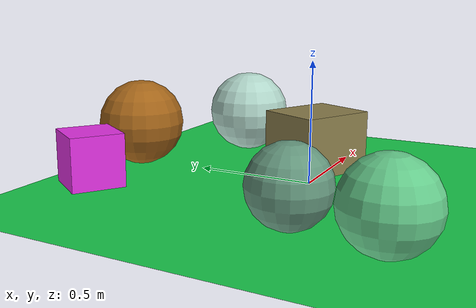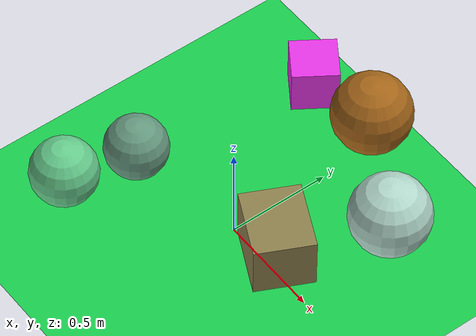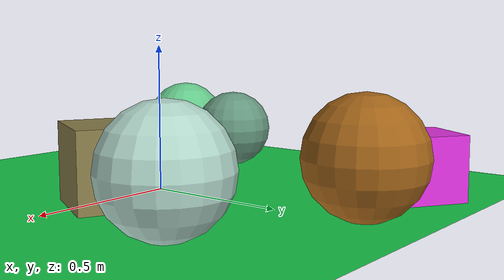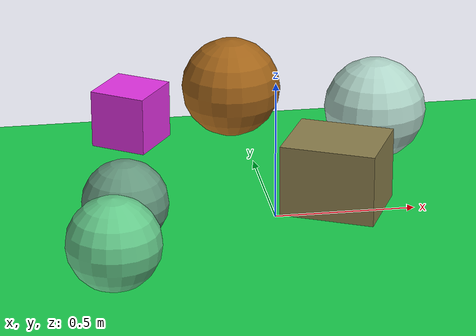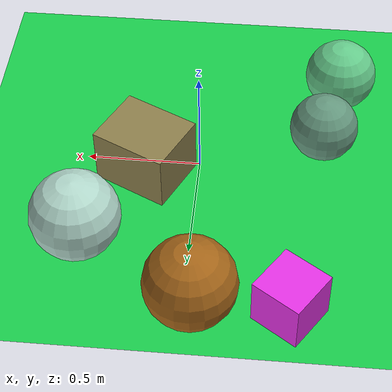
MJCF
<mujoco>
   <asset>
<texture type="skybox" builtin="gradient" rgb1="0.3 0.6 0.5" rgb2="0.2 0.8 0.5" width="256" height="256"/>
<texture name="checker_0" builtin="checker" rgb1="0.3 0.5 0.2" rgb2="0.5 0.7 0.8" width="200" height="200"/>
<texture name="checker_1" builtin="checker" rgb1="0.2 0.1 0.4" rgb2="0.9 0.9 0.2" width="200" height="200"/>
<texture name="gradient_2" builtin="gradient" rgb1="0.1 0.8 0.3" rgb2="0.7 0.8 0.8" width="200" height="200"/>
<texture name="gradient_3" builtin="gradient" rgb1="0.9 0.8 1.0" rgb2="0.5 0.9 0.6" width="200" height="200"/>
<texture name="flat_4" builtin="flat" rgb1="0.9 0.2 0.9" rgb2="0.9 0.2 0.9"  width="200" height="200"/>
<texture name="gradient_5" builtin="gradient" rgb1="0.8 0.0 0.1" rgb2="0.5 0.8 0.1" width="200" height="200"/><material name="checker_0_mat" reflectance="0" texrepeat="3 3" texture="checker_0" texuniform="false" />
<material name="checker_1_mat" reflectance="0" texrepeat="7 7" texture="checker_1" texuniform="false" />
<material name="gradient_2_mat" reflectance="0" texture="gradient_2" texuniform="true"/>
<material name="gradient_3_mat" reflectance="0" texture="gradient_3" texuniform="true"/>
<material name="flat_4_mat" reflectance="0" texture="flat_4" texuniform="true"/>
<material name="gradient_5_mat" reflectance="0" texture="gradient_5" texuniform="true"/>
   </asset>

   <worldbody>
      <light diffuse=".9 .9 .9" pos="0 0 3" dir="0 0 -1"/>
     <geom type="plane" size="1 1 0.1" rgba="0.1 0.8 0.3 1"/>
<geom type="sphere" pos="-0.54 -0.13 0.15" size="0.15 0.15 0.15" material="checker_0_mat" euler="0 0 24" />
<geom type="box" pos="0.23 0.06 0.13" size="0.14 0.17 0.13" material="checker_1_mat" euler="0 0 64" />
<geom type="sphere" pos="-0.61 -0.47 0.16" size="0.16 0.16 0.16" material="gradient_2_mat" euler="0 0 76" />
<geom type="sphere" pos="0.46 0.5 0.19" size="0.19 0.19 0.19" material="gradient_3_mat" euler="0 0 39" />
<geom type="box" pos="-0.43 0.78 0.11" size="0.11 0.11 0.11" material="flat_4_mat" euler="0 0 56" />
<geom type="sphere" pos="-0.04 0.8 0.19" size="0.19 0.19 0.19" material="gradient_5_mat" euler="0 0 77" /><camera euler="60 0 180" fovy="60" name="camera1" pos="-0.2 -1.5 1"></camera>   </worldbody>
</mujoco>
